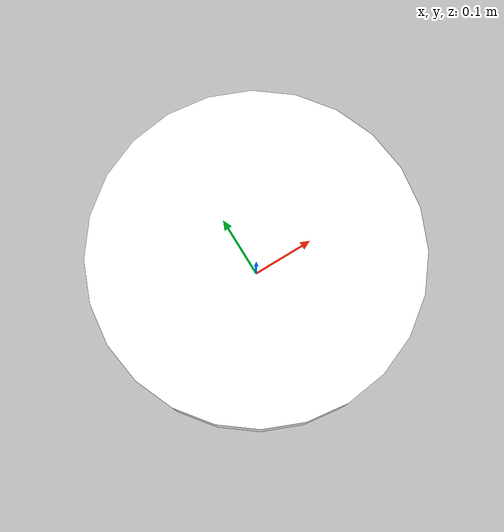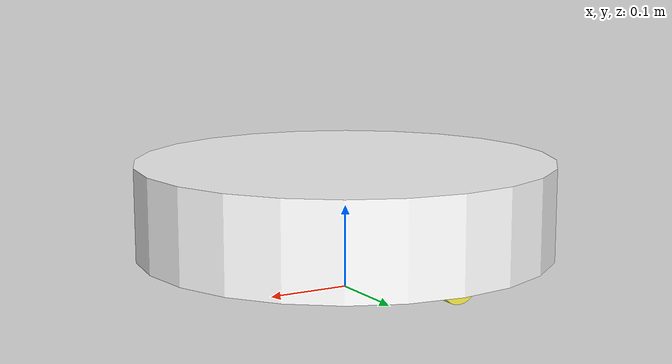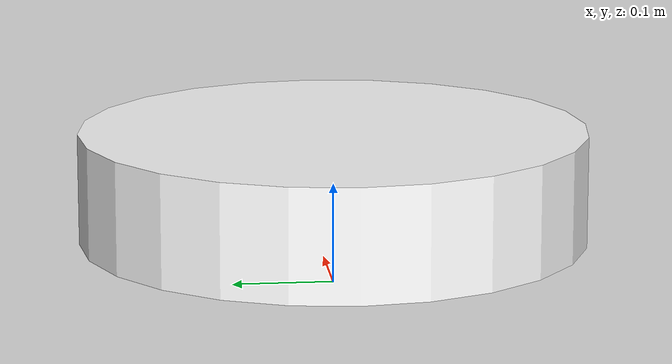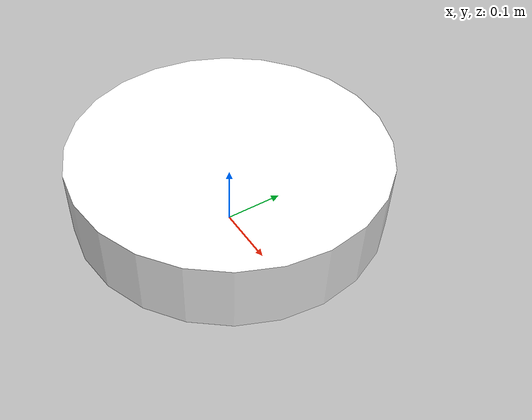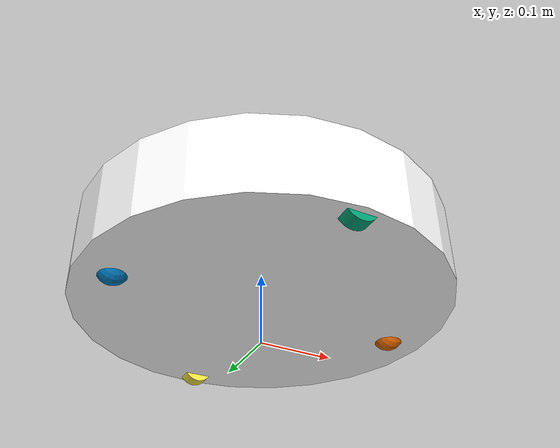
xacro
<?xml version='1.0'?>
<robot name="Edymobile" xmlns:xacro="http://ros.org/wiki/xacro">

	<material name="white">
		<color rgba="1 1 1 1"/>
	</material>

   <link name="base_link" />
   <!-- ********************** ROBOT BASE *********************************  -->
   <link name="base_center" >
	<visual>
	<origin xyz="0 0 0" rpy="0 0 0"/>
	<geometry>
		<cylinder radius="0.25" length="0.11"/>
	</geometry>
	<material name="white"/>
	</visual>
	<collision>
	<origin xyz="0 0 0" rpy="0 0 0"/>
	<geometry>
		<cylinder radius="0.25" length="0.11"/>
	</geometry>
	</collision>
	<inertial>
		<mass value="3"/>
		<inertia ixx="0.0499" ixy="0.0" ixz="0.0" iyy="0.0499" iyz="0.0" izz="0.09375"/>
	</inertial>
   </link>
   <!-- ********************** LEFT WHEEL *********************************  -->
   <link name="left_wheel" >
	<visual>
	<origin xyz="0 0 0" rpy="1.5707 -0 0"/>
	<geometry>
		<cylinder radius="0.0225" length="0.02"/>
	</geometry>
	</visual>
	<collision>
	<origin xyz="0 0 0" rpy="1.5707 -0 0"/>
	<geometry>
		<cylinder radius="0.0225" length="0.02"/>
	</geometry>
	</collision>
	<inertial>
		<mass value="0.5"/>
		<inertia ixx="0.00080" ixy="0.0" ixz="0.0" iyy="0.00080" iyz="0.0" izz="0.000266"/>
	</inertial>
   </link>
   <!-- ********************** RIGHT WHEEL *********************************  -->
   <link name="right_wheel" >
	<visual>
	<origin xyz="0 0 0" rpy="1.5707 -0 0"/>
	<geometry>
		<cylinder radius="0.0225" length="0.02"/>
	</geometry>
	</visual>
	<collision>
	<origin xyz="0 0 0" rpy="1.5707 -0 0"/>
	<geometry>
		<cylinder radius="0.0225" length="0.02"/>
	</geometry>
	</collision>
	<inertial>
		<mass value="0.5"/>
		<inertia ixx="0.00080" ixy="0.0" ixz="0.0" iyy="0.00080" iyz="0.0" izz="0.000266"/>
	</inertial>
   </link>
   <!-- ********************** BALL 1 *********************************  -->
   <link name="ball_1" >
	<visual>
	<origin xyz="0 0 0" rpy="1.5707 -0 0"/>
	<geometry>
		<sphere radius="0.0225"/>
	</geometry>
	</visual>
	<collision>
	<origin xyz="0 0 0" rpy="0 0 0"/>
	<geometry>
		<sphere radius="0.0225"/>
	</geometry>
	</collision>
	<inertial>
		<mass value="0.2"/>
		<inertia ixx="0.0000125" ixy="0.0" ixz="0.0" iyy="0.0000125" iyz="0.0" izz="0.0000125"/>
	</inertial>
   </link>
   <!-- ********************** BALL 2 *********************************  -->
   <link name="ball_2" >
	<visual>
	<origin xyz="0 0 0" rpy="1.5707 -0 0"/>
	<geometry>
		<sphere radius="0.0225"/>
	</geometry>
	</visual>
	<collision>
	<origin xyz="0 0 0" rpy="0 0 0"/>
	<geometry>
		<sphere radius="0.0225"/>
	</geometry>
	</collision>
	<inertial>
		<mass value="0.2"/>
		<inertia ixx="0.0000125" ixy="0.0" ixz="0.0" iyy="0.0000125" iyz="0.0" izz="0.0000125"/>
	</inertial>
  </link>

   <!-- ********************** JOINTS *********************************  -->
  <joint name="joint0" type="fixed">
   	<parent link="base_link"/>
   	<child link="base_center"/>
   	<origin xyz="0 0 0.1" rpy="0 0 0"/>
  </joint>

  <joint name="joint1" type="continuous">
   	<parent link="base_center"/>
   	<child link="left_wheel"/>
   	<origin xyz="0 -0.23 -0.0425"/>
      	<axis xyz="0 1 0"/>
	<limit effort="-1" velocity ="-1"/>
	<dynamics spring_reference="0" spring_stiffness="0" damping ="0"/>
  </joint>

  <joint name="joint2" type="continuous">
  	<parent link="base_center"/>
  	<child link="right_wheel"/>
  	<origin xyz="0 0.23 -0.0425"/>
      	<axis xyz="0 1 0"/>
	<limit  effort="-1" velocity ="-1"/>
	<dynamics spring_reference="0" spring_stiffness="0" damping ="0"/>
  </joint>

  <joint name="joint3" type="fixed">
  	<parent link="base_center"/>
  	<child link="ball_1"/>
  	<origin xyz="-0.2 0 -0.0425" rpy="0 0 0"/>
  </joint>

  <joint name="joint4" type="fixed">
  	<parent link="base_center"/>
  	<child link="ball_2"/>
  	<origin xyz="0.2 0 -0.0425" rpy="0 0 0"/>
  </joint>

  <gazebo>
  <plugin name="gazebo_ros_control" filename="libgazebo_ros_control.so">
  	<robotNamespace>/</robotNamespace>
   </plugin>
   </gazebo>

</robot>
